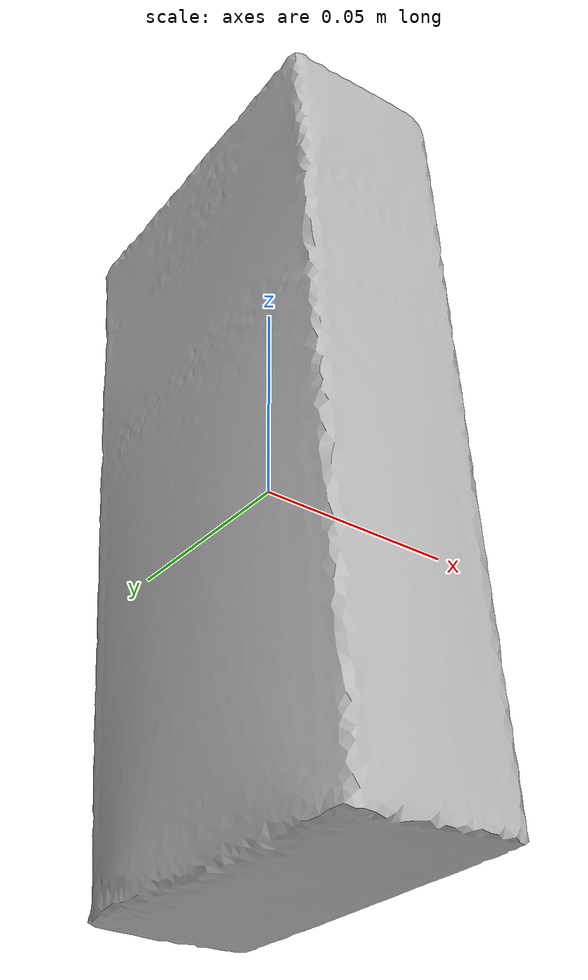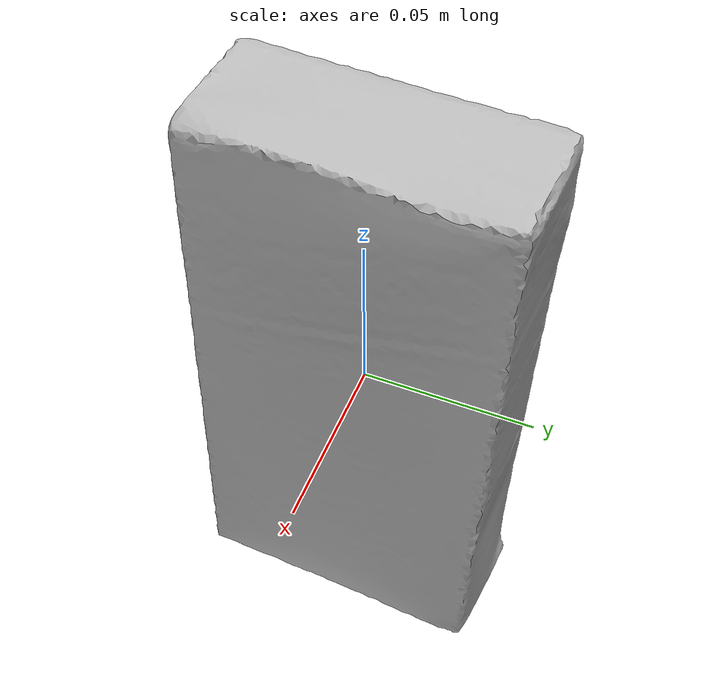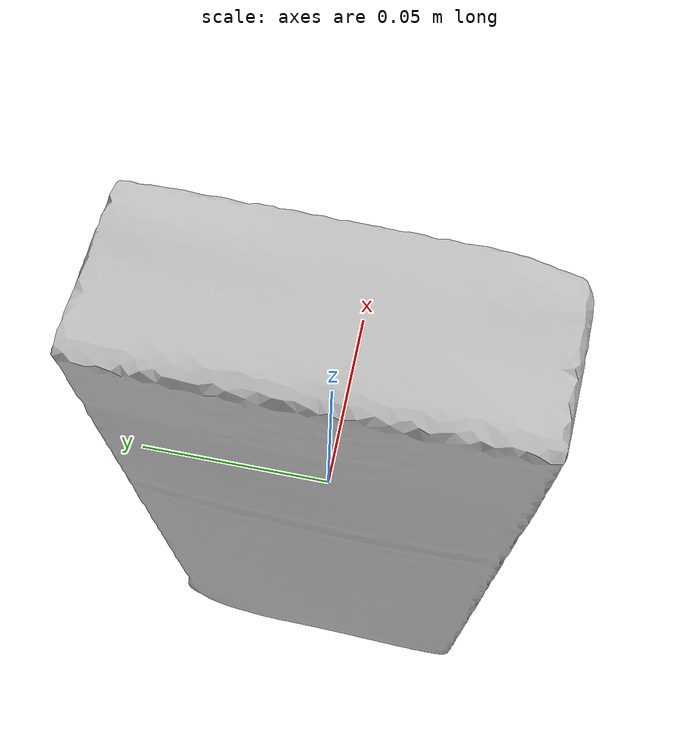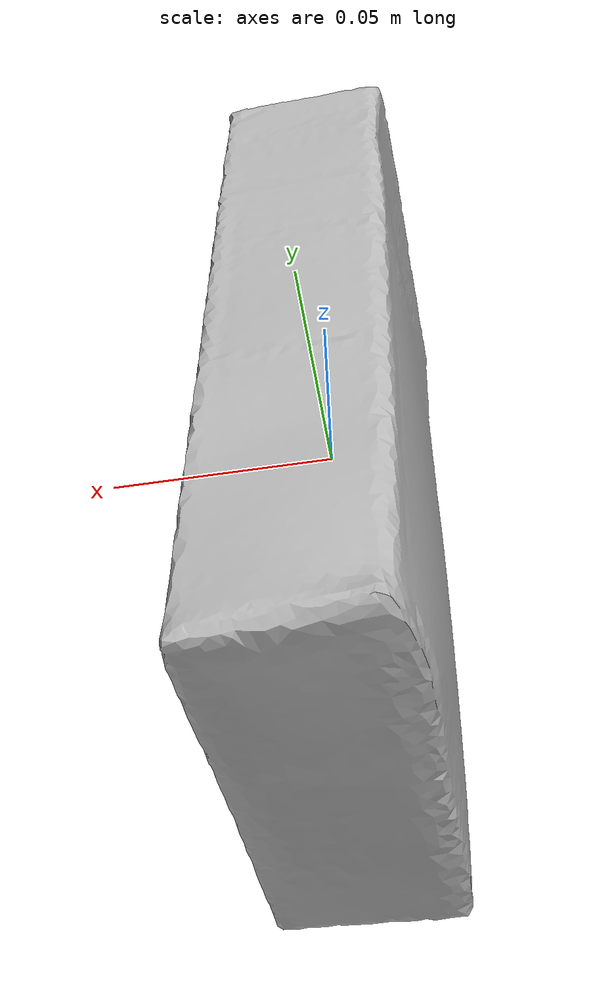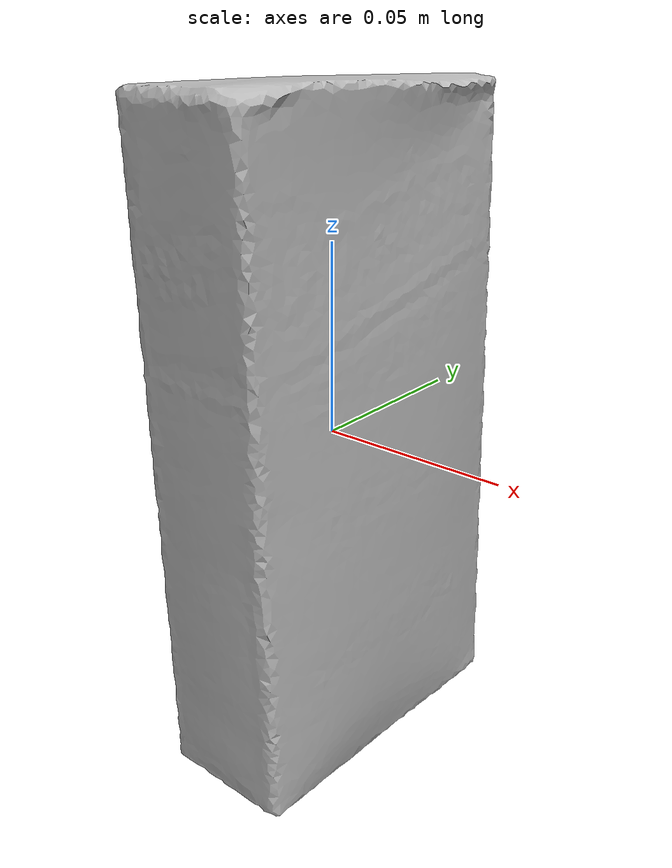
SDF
<?xml version="1.0" ?>
<sdf version="1.7">
<!--
This SDF file was automatically generated using a template modified
and authored by Jinjian Li. The moment of interia is not supposed to be changed.
-->
    <model name="obj_000003">
      <pose>0.0 0.0 0.0 0.0 0.0 0.0</pose>
      <link name="link">
        <inertial>
          <inertia>
           <ixx>0.003014771382012915</ixx>
           <ixy>-1.764471392792855e-05</ixy>
           <ixz>8.961438406103916e-05</ixz>
           <iyy>0.0025287048219920284</iyy>
           <iyz>-3.0504715459464163e-05</iyz>
           <izz>0.0007588471312824527</izz>
          </inertia>
          <mass>0.9564897571402814</mass>
        </inertial>
        <collision name="collision">
          <geometry>
            <mesh>
             <uri>obj_000003.obj</uri>
             <scale>1 1 1</scale>
            </mesh>
          </geometry>
        </collision>

        <visual name="visual">
          <geometry>
            <mesh>
             <uri>obj_000003.obj</uri>
             <scale>1 1 1</scale>
            </mesh>
          </geometry>
        </visual>
      </link>
    </model>
</sdf>
